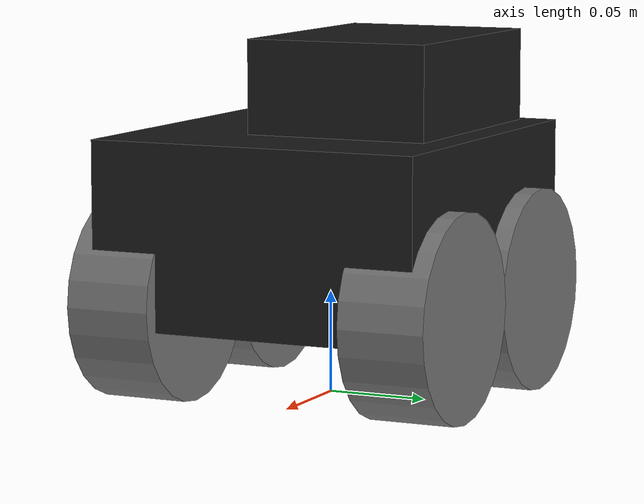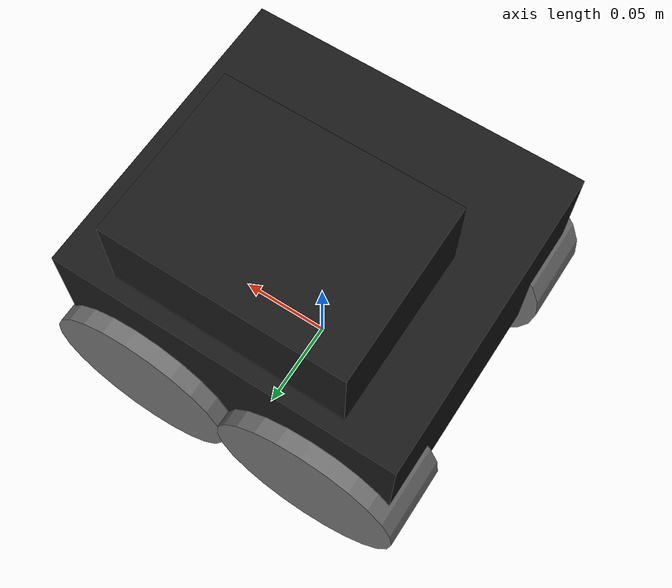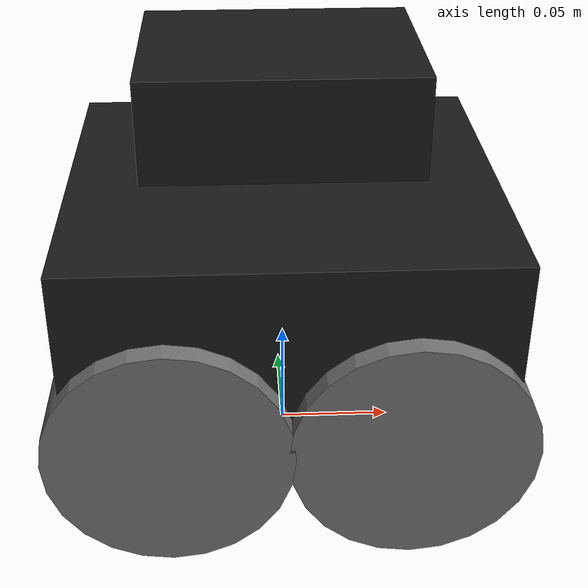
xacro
<?xml version="1.0"?>
<robot xmlns:xacro="http://www.ros.org/wiki/xacro" name="teaching_QB3rt">
  <xacro:arg name="lidar_yaw" default="3.141592653589793"/>
  <!-- Dimensions are based on the provided drawing (mm -> m), with simple approximations. -->
  <xacro:property name="chassis_length" value="0.180"/>
  <xacro:property name="chassis_width" value="0.165"/>
  <xacro:property name="chassis_height" value="0.090"/>
  <xacro:property name="ground_clearance" value="0.0397"/>
  <xacro:property name="wheel_radius" value="0.050"/>
  <xacro:property name="wheel_width" value="0.0425"/>
  <xacro:property name="wheelbase" value="0.097"/>
  <xacro:property name="track_width" value="0.1405"/>
  <xacro:property name="body_mass" value="5.5"/>
  <xacro:property name="wheel_mass" value="0.45"/>
  <!-- rb3_mount_z: chassis_height/2 (45mm) + 25mm above chassis top = 70mm above base_link -->
  <xacro:property name="rb3_mount_z" value="0.070"/>

  <xacro:include filename="$(find QB3rt)/urdf/rb3_chassis.urdf.xacro"/>

  <material name="mat_black">
    <color rgba="0.10 0.10 0.10 1.0"/>
  </material>
  <material name="mat_gray">
    <color rgba="0.45 0.45 0.45 1.0"/>
  </material>

  <link name="base_footprint"/>
  <joint name="base_footprint_joint" type="fixed">
    <parent link="base_footprint"/>
    <child link="base_link"/>
    <origin xyz="0 0 ${ground_clearance + (chassis_height / 2.0)}" rpy="0 0 0"/>
  </joint>

  <link name="base_link">
    <visual>
      <geometry>
        <box size="${chassis_length} ${chassis_width} ${chassis_height}"/>
      </geometry>
      <material name="mat_black"/>
    </visual>
    <collision>
      <geometry>
        <box size="${chassis_length} ${chassis_width} ${chassis_height}"/>
      </geometry>
    </collision>
    <inertial>
      <mass value="${body_mass}"/>
      <origin xyz="0 0 0" rpy="0 0 0"/>
      <inertia ixx="0.025" ixy="0.0" ixz="0.0" iyy="0.035" iyz="0.0" izz="0.045"/>
    </inertial>
  </link>

  <xacro:macro name="wheel_link" params="name">
    <link name="${name}">
      <visual>
        <origin xyz="0 0 0" rpy="${pi/2} 0 0"/>
        <geometry>
          <cylinder radius="${wheel_radius}" length="${wheel_width}"/>
        </geometry>
        <material name="mat_gray"/>
      </visual>
      <collision>
        <origin xyz="0 0 0" rpy="${pi/2} 0 0"/>
        <geometry>
          <cylinder radius="${wheel_radius}" length="${wheel_width}"/>
        </geometry>
      </collision>
      <inertial>
        <mass value="${wheel_mass}"/>
        <origin xyz="0 0 0" rpy="0 0 0"/>
        <inertia ixx="0.0008" ixy="0.0" ixz="0.0" iyy="0.0004" iyz="0.0" izz="0.0008"/>
      </inertial>
    </link>
  </xacro:macro>

  <xacro:wheel_link name="front_left_wheel_link"/>
  <xacro:wheel_link name="front_right_wheel_link"/>
  <xacro:wheel_link name="rear_left_wheel_link"/>
  <xacro:wheel_link name="rear_right_wheel_link"/>

  <joint name="front_left_wheel_joint" type="continuous">
    <parent link="base_link"/>
    <child link="front_left_wheel_link"/>
    <origin xyz="${wheelbase / 2.0} ${track_width / 2.0} ${wheel_radius - ground_clearance - (chassis_height / 2.0)}" rpy="0 0 0"/>
    <axis xyz="0 1 0"/>
  </joint>

  <joint name="front_right_wheel_joint" type="continuous">
    <parent link="base_link"/>
    <child link="front_right_wheel_link"/>
    <origin xyz="${wheelbase / 2.0} ${-track_width / 2.0} ${wheel_radius - ground_clearance - (chassis_height / 2.0)}" rpy="0 0 0"/>
    <axis xyz="0 1 0"/>
  </joint>

  <joint name="rear_left_wheel_joint" type="continuous">
    <parent link="base_link"/>
    <child link="rear_left_wheel_link"/>
    <origin xyz="${-wheelbase / 2.0} ${track_width / 2.0} ${wheel_radius - ground_clearance - (chassis_height / 2.0)}" rpy="0 0 0"/>
    <axis xyz="0 1 0"/>
  </joint>

  <joint name="rear_right_wheel_joint" type="continuous">
    <parent link="base_link"/>
    <child link="rear_right_wheel_link"/>
    <origin xyz="${-wheelbase / 2.0} ${-track_width / 2.0} ${wheel_radius - ground_clearance - (chassis_height / 2.0)}" rpy="0 0 0"/>
    <axis xyz="0 1 0"/>
  </joint>

  <!-- rb3 board sits 3cm to the left of the robot centreline (measured) -->
  <xacro:rb3_chassis parent_link="base_link" prefix="rb3" xyz="0 0.030 ${rb3_mount_z}" rpy="0 0 0"/>

  <link name="laser_frame"/>
  <joint name="laser_joint" type="fixed">
    <parent link="base_link"/>
    <child link="laser_frame"/>
    <origin xyz="0.0 0.0 0.170" rpy="0 0 $(arg lidar_yaw)"/>
  </joint>
</robot>

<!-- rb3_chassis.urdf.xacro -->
<robot xmlns:xacro="http://www.ros.org/wiki/xacro">
  <!-- Approximate RB3 Gen2 mezzanine/chassis model with camera and IMU frames. -->
  <xacro:macro name="rb3_chassis" params="parent_link prefix xyz:='0 0 0' rpy:='0 0 0'">
    <xacro:property name="rb3_length" value="0.120"/>
    <xacro:property name="rb3_width" value="0.090"/>
    <xacro:property name="rb3_height" value="0.045"/>
    <xacro:property name="bar_length" value="0.115"/>
    <xacro:property name="bar_width" value="0.012"/>
    <xacro:property name="bar_height" value="0.008"/>
    <xacro:property name="camera_bar_z" value="0.000"/>

    <joint name="${prefix}_mount_joint" type="fixed">
      <parent link="${parent_link}"/>
      <child link="${prefix}_base_link"/>
      <origin xyz="${xyz}" rpy="${rpy}"/>
    </joint>

    <link name="${prefix}_base_link">
      <visual>
        <geometry>
          <box size="${rb3_length} ${rb3_width} ${rb3_height}"/>
        </geometry>
        <material name="mat_black"/>
      </visual>
      <collision>
        <geometry>
          <box size="${rb3_length} ${rb3_width} ${rb3_height}"/>
        </geometry>
      </collision>
      <inertial>
        <mass value="0.55"/>
        <origin xyz="0 0 0" rpy="0 0 0"/>
        <inertia ixx="0.0010" ixy="0.0" ixz="0.0" iyy="0.0012" iyz="0.0" izz="0.0015"/>
      </inertial>
    </link>

    <joint name="${prefix}_camera_bar_joint" type="fixed">
      <parent link="${prefix}_base_link"/>
      <child link="${prefix}_camera_bar_link"/>
      <origin xyz="0 0 ${camera_bar_z}" rpy="0 0 0"/>
    </joint>
    <link name="${prefix}_camera_bar_link">
      <visual>
        <geometry>
          <box size="${bar_length} ${bar_width} ${bar_height}"/>
        </geometry>
        <material name="mat_gray"/>
      </visual>
      <collision>
        <geometry>
          <box size="${bar_length} ${bar_width} ${bar_height}"/>
        </geometry>
      </collision>
    </link>

    <joint name="${prefix}_imu_joint" type="fixed">
      <parent link="${prefix}_base_link"/>
      <child link="imu_link"/>
      <origin xyz="0 0 0" rpy="0 0 ${-pi/2}"/>
    </joint>
    <link name="imu_link"/>

    <joint name="${prefix}_tracking_camera_joint" type="fixed">
      <parent link="${prefix}_camera_bar_link"/>
      <child link="tracking_camera_frame"/>
      <origin xyz="0.0849 -0.0141 0.0792" rpy="0 -0.6163 0"/>
    </joint>
    <link name="tracking_camera_frame"/>

    <joint name="${prefix}_main_camera_joint" type="fixed">
      <parent link="${prefix}_camera_bar_link"/>
      <child link="main_camera_frame"/>
      <origin xyz="0.065 -0.033 0.012" rpy="0 0 0"/>
    </joint>
    <link name="main_camera_frame"/>

    <!-- Backward-compatibility frame alias for existing configs expecting camera_frame. -->
    <joint name="${prefix}_camera_alias_joint" type="fixed">
      <parent link="main_camera_frame"/>
      <child link="camera_frame"/>
      <origin xyz="0 0 0" rpy="0 0 0"/>
    </joint>
    <link name="camera_frame"/>
  </xacro:macro>
</robot>
